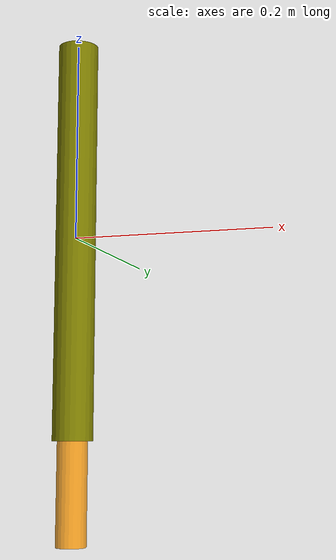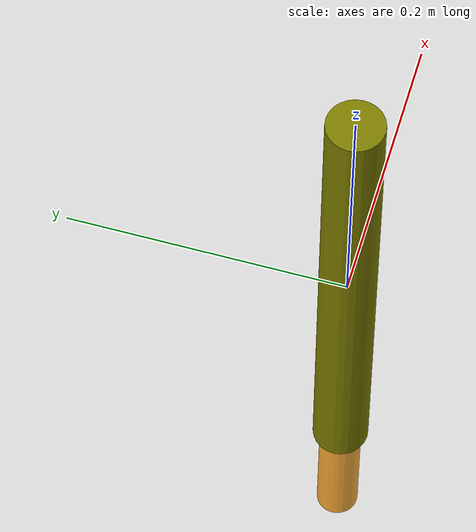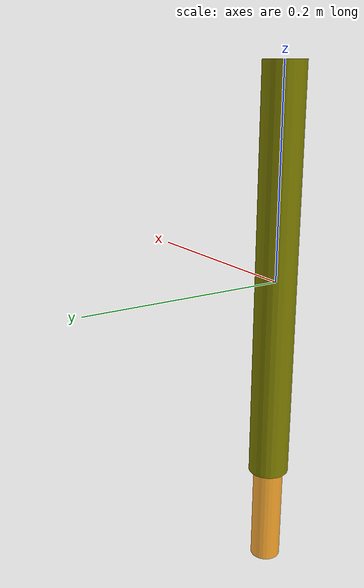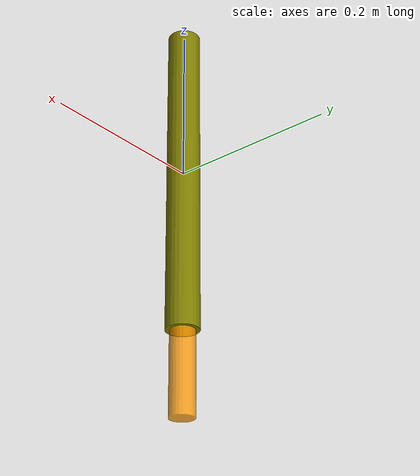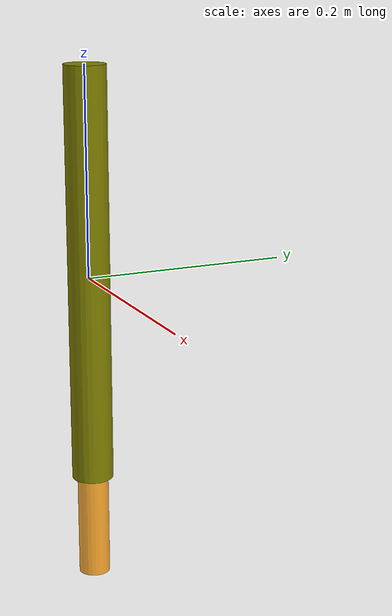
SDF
<?xml version="1.0"?>
<sdf version="1.9">
  <model name="missile">
    <static>false</static>
    <link name="body">
      <inertial>
        <mass>0.5</mass>
        <inertia>
          <ixx>0.001</ixx>
          <ixy>0</ixy>
          <ixz>0</ixz>
          <iyy>0.01</iyy>
          <iyz>0</iyz>
          <izz>0.01</izz>
        </inertia>
      </inertial>

      <collision name="missile_collision">
        <geometry>
          <cylinder>
            <radius>0.02</radius>
            <length>0.4</length>
          </cylinder>
        </geometry>
      </collision>

      <visual name="missile_visual">
        <geometry>
          <cylinder>
            <radius>0.02</radius>
            <length>0.4</length>
          </cylinder>
        </geometry>
        <material>
          <ambient>0.3 0.3 0.0 1</ambient>
          <diffuse>0.5 0.5 0.0 1</diffuse>
          <specular>0.6 0.6 0.2 1</specular>
        </material>
      </visual>

      <!-- Flame/exhaust visual at tail -->
      <visual name="exhaust_visual">
        <pose>0 0 -0.25 0 0 0</pose>
        <geometry>
          <cylinder>
            <radius>0.015</radius>
            <length>0.1</length>
          </cylinder>
        </geometry>
        <material>
          <ambient>1.0 0.5 0.0 0.8</ambient>
          <diffuse>1.0 0.6 0.0 0.8</diffuse>
          <specular>0.8 0.4 0.0 0.8</specular>
        </material>
      </visual>
    </link>
  </model>
</sdf>
